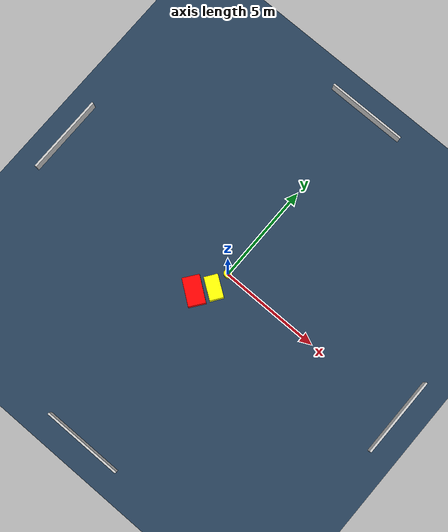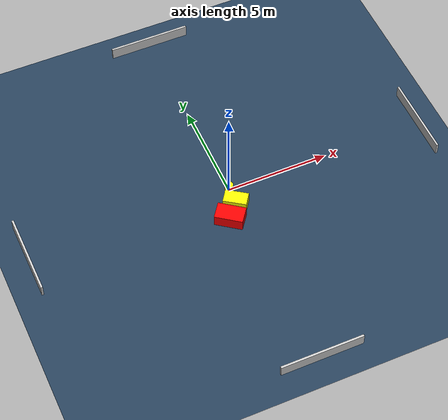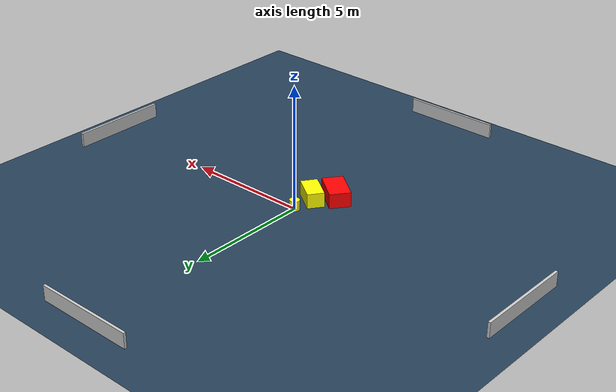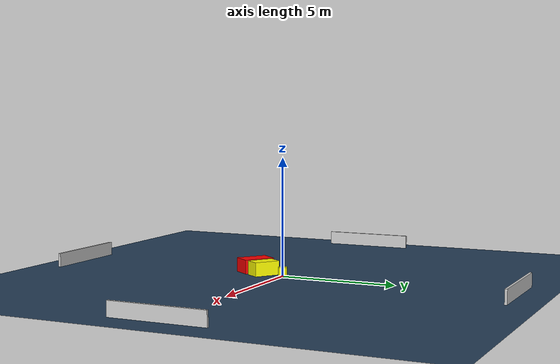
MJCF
<?xml version="1.0" ?>
<mujoco model="generated_environment">
  <option timestep="0.01" integrator="RK4" cone="elliptic"/>
  <default>
    <geom density="1"/>
  </default>
  <asset>
    <texture builtin="gradient" height="3072" name="skybox" rgb1="0.3 0.5 0.7" rgb2="0 0 0" type="skybox" width="512"/>
    <texture builtin="checker" height="300" name="groundplane" rgb1="0.2 0.3 0.4" rgb2="0.1 0.2 0.3" type="2d" width="300"/>
    <material name="groundplane" reflectance="0.2" texrepeat="5 5" texture="groundplane"/>
  </asset>
  <worldbody>
    <light dir="0 0 -1" directional="true" pos="0 0 1.5"/>
    <geom condim="3" friction="0.5 0.005 0.001" material="groundplane" name="floor" pos="0 0 0" size="0 0 0.05" type="plane"/>
    <body name="walls">
      <geom name="wall_1" condim="4" pos="-10.0 0.0 0.3" rgba="0.800000011920929 0.800000011920929 0.800000011920929 1.0" size="0.05 2.0 0.3" type="box"/>
      <geom name="wall_2" condim="4" pos="10.0 0.0 0.3" rgba="0.800000011920929 0.800000011920929 0.800000011920929 1.0" size="0.05 2.0 0.3" type="box"/>
      <geom name="wall_3" condim="4" pos="0.0 -10.0 0.3" rgba="0.800000011920929 0.800000011920929 0.800000011920929 1.0" size="2.0 0.05 0.3" type="box"/>
      <geom name="wall_4" condim="4" pos="0.0 10.0 0.3" rgba="0.800000011920929 0.800000011920929 0.800000011920929 1.0" size="2.0 0.05 0.3" type="box"/>
    </body>
    <body name="robot">
      <joint name="joint_x" type="slide" pos="0 0 0" axis="1 0 0"/>
      <joint name="joint_y" type="slide" pos="0 0 0" axis="0 1 0"/>
      <geom name="robot" type="cylinder" pos="0.0 0.0 0.2" size="0.2 0.2 0.0" mass="5.0" friction="1.0 0.005 0.0001" condim="4" rgba="1.0 1.0 0.0 1.0"/>
    </body>
    <body name="obstacle_1_movable">
      <geom name="obstacle_1_movable" condim="4" pos="-0.06619301678680206 -0.9225093219034165 0.3" euler="0 0 145.0339670009262" friction="0.0 0.005 0.001" rgba="1.0 1.0 0.0 1.0" size="0.562901988095103 0.33607967423732144 0.3" type="box" mass="0.1"/>
      <joint type="free"/>
    </body>
    <body name="obstacle_2_static">
      <geom name="obstacle_2_static" condim="4" pos="-0.6575164666436085 -1.6211655054343301 0.3" euler="0 0 323.3908547140605" friction="0.0 0.005 0.001" rgba="1.0 0.0 0.0 1.0" size="0.6769472644973896 0.42034865547665423 0.3" type="box"/>
    </body>
  </worldbody>
  <actuator>
    <motor name="actuator_x" joint="joint_x" gear="1" ctrlrange="-1 1"/>
    <motor name="actuator_y" joint="joint_y" gear="1" ctrlrange="-1 1"/>
  </actuator>
</mujoco>
